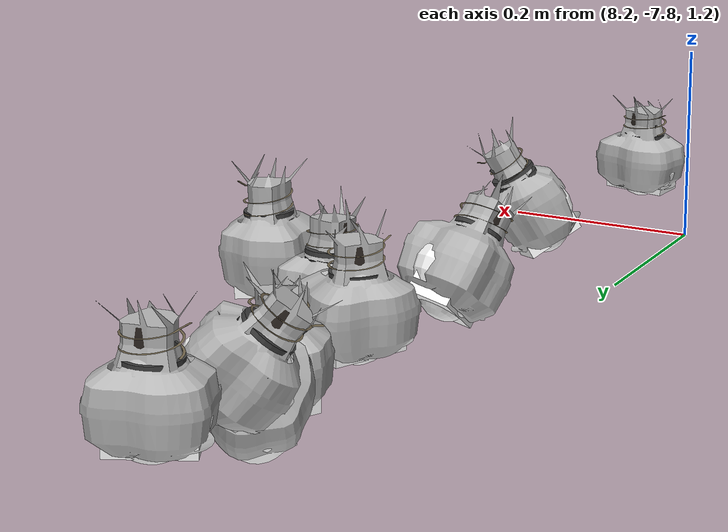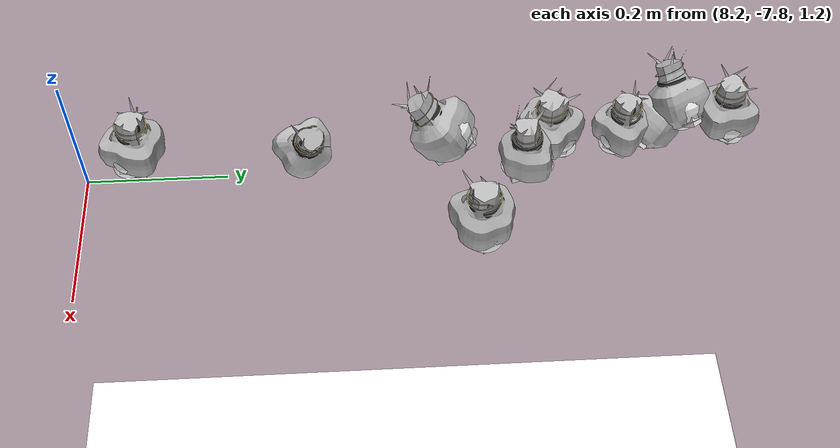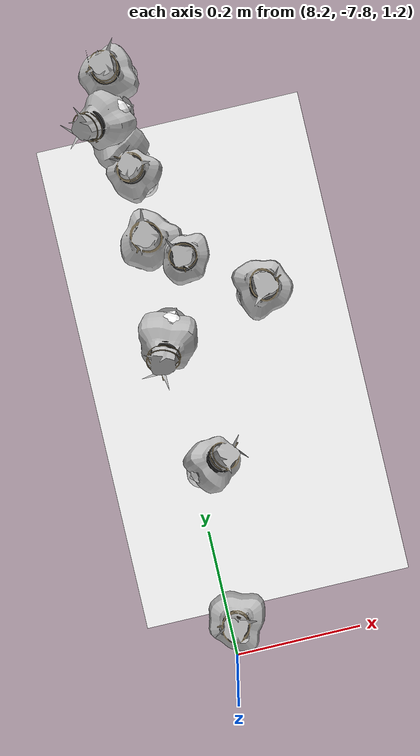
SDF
<sdf version="1.11">
 <world name="peach_orchard">
  <model name="ground">
   <static>true</static>
   <link name="link">
    <visual name="soil">
     <geometry><plane><normal>0 0 1</normal><size>32 22</size></plane></geometry>
     <material>
      <ambient>1 1 1 1</ambient>
      <diffuse>1 1 1 1</diffuse>
      <specular>0.1 0.1 0.1 1</specular>
      <pbr>
       <metal>
        <albedo_map>textures/soil_albedo.png</albedo_map>
        <normal_map type="tangent">textures/soil_normal.png</normal_map>
        <roughness>0.95</roughness>
        <metalness>0</metalness>
       </metal>
      </pbr>
     </material>
    </visual>
    <collision name="c_soil">
     <geometry><plane><normal>0 0 1</normal><size>32 22</size></plane></geometry>
    </collision>
   </link>
  </model>
  <model name="peach_tree_r4_t0_00">
   <pose>8.22 -6.90467 1.29116 0 0.0389199 -2.98187</pose>
   <static>true</static>
   <link name="bag">
    <visual name="bag_mesh">
     <pose>0 0 0.0428784 0 0 -0</pose>
     <geometry>
      <mesh><uri>model://peach_sim/meshes/bagged_peach.glb</uri><scale>1.01454 1.09332 0.974508</scale></mesh>
     </geometry>
    </visual>
    <visual name="body">
     <pose>0 0 0.0248784 0 0 0</pose>
     <geometry><ellipsoid><radii>0.0380451 0.0284263 0.0268686</radii></ellipsoid></geometry>
     <material>
      <ambient>1 1 1 1</ambient>
      <diffuse>1 1 1 1</diffuse>
      <specular>0.1 0.1 0.1 1</specular>
      <pbr>
       <metal>
        <albedo_map>textures/paper_bag_albedo.png</albedo_map>
        <normal_map type="tangent">textures/paper_bag_normal.png</normal_map>
        <roughness>0.72</roughness>
        <metalness>0</metalness>
       </metal>
      </pbr>
     </material>
    </visual>
    <visual name="bottom_fold">
     <pose>0 0 0.012 0 0 0.35</pose>
     <geometry><box><size>0.05897 0.0326902 0.022</size></box></geometry>
     <material>
      <ambient>1 1 1 1</ambient>
      <diffuse>1 1 1 1</diffuse>
      <specular>0.1 0.1 0.1 1</specular>
      <pbr>
       <metal>
        <albedo_map>textures/paper_bag_albedo.png</albedo_map>
        <normal_map type="tangent">textures/paper_bag_normal.png</normal_map>
        <roughness>0.8</roughness>
        <metalness>0</metalness>
       </metal>
      </pbr>
     </material>
    </visual>
    <visual name="fruit">
     <pose>0 0 0.0201139 0 0 0</pose>
     <geometry><sphere><radius>0.0271585</radius></sphere></geometry>
     <material>
      <ambient>1 1 1 1</ambient>
      <diffuse>1 1 1 1</diffuse>
      <specular>0.1 0.1 0.1 1</specular>
      <pbr>
       <metal>
        <albedo_map>textures/fruit_skin_albedo.png</albedo_map>
        <normal_map type="tangent">textures/fruit_skin_normal.png</normal_map>
        <roughness>0.55</roughness>
        <metalness>0</metalness>
       </metal>
      </pbr>
     </material>
    </visual>
    <visual name="neck">
     <pose>0 0 0.0587567 0 0 0</pose>
     <geometry><cylinder><radius>0.013</radius><length>0.018</length></cylinder></geometry>
     <material>
      <ambient>1 1 1 1</ambient>
      <diffuse>1 1 1 1</diffuse>
      <specular>0.1 0.1 0.1 1</specular>
      <pbr>
       <metal>
        <albedo_map>textures/paper_bag_albedo.png</albedo_map>
        <normal_map type="tangent">textures/paper_bag_normal.png</normal_map>
        <roughness>0.75</roughness>
        <metalness>0</metalness>
       </metal>
      </pbr>
     </material>
    </visual>
    <visual name="gather">
     <pose>0 0 0.0397567 0 0 0</pose>
     <geometry><cylinder><radius>0.019</radius><length>0.02</length></cylinder></geometry>
     <material>
      <ambient>1 1 1 1</ambient>
      <diffuse>1 1 1 1</diffuse>
      <specular>0.1 0.1 0.1 1</specular>
      <pbr>
       <metal>
        <albedo_map>textures/paper_bag_albedo.png</albedo_map>
        <normal_map type="tangent">textures/paper_bag_normal.png</normal_map>
        <roughness>0.8</roughness>
        <metalness>0</metalness>
       </metal>
      </pbr>
     </material>
    </visual>
    <visual name="inner_paper">
     <pose>0 0 0.0637567 0 0 0</pose>
     <geometry><cylinder><radius>0.01</radius><length>0.008</length></cylinder></geometry>
     <material>
      <ambient>0.180392 0.14902 0.133333 1</ambient>
      <diffuse>0.180392 0.14902 0.133333 1</diffuse>
      <specular>0.1 0.1 0.1 1</specular>
     </material>
    </visual>
    <visual name="wire_0">
     <pose>0 0 0.0537567 0 0 0</pose>
     <geometry><cylinder><radius>0.0205</radius><length>0.0035</length></cylinder></geometry>
     <material>
      <ambient>0.25 0.25 0.25 1</ambient>
      <diffuse>0.25 0.25 0.25 1</diffuse>
      <specular>0.1 0.1 0.1 1</specular>
     </material>
    </visual>
    <visual name="wire_1">
     <pose>0 0 0.0607567 0 0 0</pose>
     <geometry><cylinder><radius>0.0205</radius><length>0.0035</length></cylinder></geometry>
     <material>
      <ambient>0.25 0.25 0.25 1</ambient>
      <diffuse>0.25 0.25 0.25 1</diffuse>
      <specular>0.1 0.1 0.1 1</specular>
     </material>
    </visual>
    <visual name="wire_tail">
     <pose>0.01 0 0.0617567 0 0.521618 0</pose>
     <geometry><cylinder><radius>0.0012</radius><length>0.026</length></cylinder></geometry>
     <material>
      <ambient>0.25 0.25 0.25 1</ambient>
      <diffuse>0.25 0.25 0.25 1</diffuse>
      <specular>0.1 0.1 0.1 1</specular>
     </material>
    </visual>
    <collision name="c_body">
     <pose>0 0 0.0248784 0 0 0</pose>
     <geometry><cylinder><radius>0.0380451</radius><length>0.0497567</length></cylinder></geometry>
    </collision>
   </link>
  </model>
  <model name="peach_tree_r4_t0_01">
   <pose>8.22 -7.01843 1.27 0 0.739093 2.13133</pose>
   <static>true</static>
   <link name="bag">
    <visual name="bag_mesh">
     <pose>0 0 0.0444696 0 0 0</pose>
     <geometry>
      <mesh><uri>model://peach_sim/meshes/bagged_peach.glb</uri><scale>0.957602 1.08481 1.01067</scale></mesh>
     </geometry>
    </visual>
    <visual name="body">
     <pose>0 0 0.0264696 0 0 0</pose>
     <geometry><ellipsoid><radii>0.0359101 0.028205 0.0285872</radii></ellipsoid></geometry>
     <material>
      <ambient>1 1 1 1</ambient>
      <diffuse>1 1 1 1</diffuse>
      <specular>0.1 0.1 0.1 1</specular>
      <pbr>
       <metal>
        <albedo_map>textures/paper_bag_albedo.png</albedo_map>
        <normal_map type="tangent">textures/paper_bag_normal.png</normal_map>
        <roughness>0.72</roughness>
        <metalness>0</metalness>
       </metal>
      </pbr>
     </material>
    </visual>
    <visual name="bottom_fold">
     <pose>0 0 0.012 0 0 0.35</pose>
     <geometry><box><size>0.0556606 0.0324357 0.022</size></box></geometry>
     <material>
      <ambient>1 1 1 1</ambient>
      <diffuse>1 1 1 1</diffuse>
      <specular>0.1 0.1 0.1 1</specular>
      <pbr>
       <metal>
        <albedo_map>textures/paper_bag_albedo.png</albedo_map>
        <normal_map type="tangent">textures/paper_bag_normal.png</normal_map>
        <roughness>0.8</roughness>
        <metalness>0</metalness>
       </metal>
      </pbr>
     </material>
    </visual>
    <visual name="fruit">
     <pose>0 0 0.0205557 0 0 0</pose>
     <geometry><sphere><radius>0.027618</radius></sphere></geometry>
     <material>
      <ambient>1 1 1 1</ambient>
      <diffuse>1 1 1 1</diffuse>
      <specular>0.1 0.1 0.1 1</specular>
      <pbr>
       <metal>
        <albedo_map>textures/fruit_skin_albedo.png</albedo_map>
        <normal_map type="tangent">textures/fruit_skin_normal.png</normal_map>
        <roughness>0.55</roughness>
        <metalness>0</metalness>
       </metal>
      </pbr>
     </material>
    </visual>
    <visual name="neck">
     <pose>0 0 0.0619392 0 0 0</pose>
     <geometry><cylinder><radius>0.013</radius><length>0.018</length></cylinder></geometry>
     <material>
      <ambient>1 1 1 1</ambient>
      <diffuse>1 1 1 1</diffuse>
      <specular>0.1 0.1 0.1 1</specular>
      <pbr>
       <metal>
        <albedo_map>textures/paper_bag_albedo.png</albedo_map>
        <normal_map type="tangent">textures/paper_bag_normal.png</normal_map>
        <roughness>0.75</roughness>
        <metalness>0</metalness>
       </metal>
      </pbr>
     </material>
    </visual>
    <visual name="gather">
     <pose>0 0 0.0429392 0 0 0</pose>
     <geometry><cylinder><radius>0.019</radius><length>0.02</length></cylinder></geometry>
     <material>
      <ambient>1 1 1 1</ambient>
      <diffuse>1 1 1 1</diffuse>
      <specular>0.1 0.1 0.1 1</specular>
      <pbr>
       <metal>
        <albedo_map>textures/paper_bag_albedo.png</albedo_map>
        <normal_map type="tangent">textures/paper_bag_normal.png</normal_map>
        <roughness>0.8</roughness>
        <metalness>0</metalness>
       </metal>
      </pbr>
     </material>
    </visual>
    <visual name="inner_paper">
     <pose>0 0 0.0669392 0 0 0</pose>
     <geometry><cylinder><radius>0.01</radius><length>0.008</length></cylinder></geometry>
     <material>
      <ambient>0.180392 0.14902 0.133333 1</ambient>
      <diffuse>0.180392 0.14902 0.133333 1</diffuse>
      <specular>0.1 0.1 0.1 1</specular>
     </material>
    </visual>
    <visual name="wire_0">
     <pose>0 0 0.0569392 0 0 0</pose>
     <geometry><cylinder><radius>0.0205</radius><length>0.0035</length></cylinder></geometry>
     <material>
      <ambient>0.25 0.25 0.25 1</ambient>
      <diffuse>0.25 0.25 0.25 1</diffuse>
      <specular>0.1 0.1 0.1 1</specular>
     </material>
    </visual>
    <visual name="wire_1">
     <pose>0 0 0.0639392 0 0 0</pose>
     <geometry><cylinder><radius>0.0205</radius><length>0.0035</length></cylinder></geometry>
     <material>
      <ambient>0.25 0.25 0.25 1</ambient>
      <diffuse>0.25 0.25 0.25 1</diffuse>
      <specular>0.1 0.1 0.1 1</specular>
     </material>
    </visual>
    <visual name="wire_tail">
     <pose>0.01 0 0.0649392 0 0.521618 0</pose>
     <geometry><cylinder><radius>0.0012</radius><length>0.026</length></cylinder></geometry>
     <material>
      <ambient>0.25 0.25 0.25 1</ambient>
      <diffuse>0.25 0.25 0.25 1</diffuse>
      <specular>0.1 0.1 0.1 1</specular>
     </material>
    </visual>
    <collision name="c_body">
     <pose>0 0 0.0264696 0 0 0</pose>
     <geometry><cylinder><radius>0.0359101</radius><length>0.0529392</length></cylinder></geometry>
    </collision>
   </link>
  </model>
  <model name="peach_tree_r4_t0_02">
   <pose>8.22 -7.04487 1.27 0 0.0208164 2.27193</pose>
   <static>true</static>
   <link name="bag">
    <visual name="bag_mesh">
     <pose>0 0 0.0414469 0 0 0</pose>
     <geometry>
      <mesh><uri>model://peach_sim/meshes/bagged_peach.glb</uri><scale>0.959274 1.07023 0.941975</scale></mesh>
     </geometry>
    </visual>
    <visual name="body">
     <pose>0 0 0.0234469 0 0 0</pose>
     <geometry><ellipsoid><radii>0.0359728 0.0278259 0.0253227</radii></ellipsoid></geometry>
     <material>
      <ambient>1 1 1 1</ambient>
      <diffuse>1 1 1 1</diffuse>
      <specular>0.1 0.1 0.1 1</specular>
      <pbr>
       <metal>
        <albedo_map>textures/paper_bag_albedo.png</albedo_map>
        <normal_map type="tangent">textures/paper_bag_normal.png</normal_map>
        <roughness>0.72</roughness>
        <metalness>0</metalness>
       </metal>
      </pbr>
     </material>
    </visual>
    <visual name="bottom_fold">
     <pose>0 0 0.012 0 0 0.35</pose>
     <geometry><box><size>0.0557578 0.0319998 0.022</size></box></geometry>
     <material>
      <ambient>1 1 1 1</ambient>
      <diffuse>1 1 1 1</diffuse>
      <specular>0.1 0.1 0.1 1</specular>
      <pbr>
       <metal>
        <albedo_map>textures/paper_bag_albedo.png</albedo_map>
        <normal_map type="tangent">textures/paper_bag_normal.png</normal_map>
        <roughness>0.8</roughness>
        <metalness>0</metalness>
       </metal>
      </pbr>
     </material>
    </visual>
    <visual name="fruit">
     <pose>0 0 0.0189409 0 0 0</pose>
     <geometry><sphere><radius>0.0259385</radius></sphere></geometry>
     <material>
      <ambient>1 1 1 1</ambient>
      <diffuse>1 1 1 1</diffuse>
      <specular>0.1 0.1 0.1 1</specular>
      <pbr>
       <metal>
        <albedo_map>textures/fruit_skin_albedo.png</albedo_map>
        <normal_map type="tangent">textures/fruit_skin_normal.png</normal_map>
        <roughness>0.55</roughness>
        <metalness>0</metalness>
       </metal>
      </pbr>
     </material>
    </visual>
    <visual name="neck">
     <pose>0 0 0.0558938 0 0 0</pose>
     <geometry><cylinder><radius>0.013</radius><length>0.018</length></cylinder></geometry>
     <material>
      <ambient>1 1 1 1</ambient>
      <diffuse>1 1 1 1</diffuse>
      <specular>0.1 0.1 0.1 1</specular>
      <pbr>
       <metal>
        <albedo_map>textures/paper_bag_albedo.png</albedo_map>
        <normal_map type="tangent">textures/paper_bag_normal.png</normal_map>
        <roughness>0.75</roughness>
        <metalness>0</metalness>
       </metal>
      </pbr>
     </material>
    </visual>
    <visual name="gather">
     <pose>0 0 0.0368938 0 0 0</pose>
     <geometry><cylinder><radius>0.019</radius><length>0.02</length></cylinder></geometry>
     <material>
      <ambient>1 1 1 1</ambient>
      <diffuse>1 1 1 1</diffuse>
      <specular>0.1 0.1 0.1 1</specular>
      <pbr>
       <metal>
        <albedo_map>textures/paper_bag_albedo.png</albedo_map>
        <normal_map type="tangent">textures/paper_bag_normal.png</normal_map>
        <roughness>0.8</roughness>
        <metalness>0</metalness>
       </metal>
      </pbr>
     </material>
    </visual>
    <visual name="inner_paper">
     <pose>0 0 0.0608938 0 0 0</pose>
     <geometry><cylinder><radius>0.01</radius><length>0.008</length></cylinder></geometry>
     <material>
      <ambient>0.180392 0.14902 0.133333 1</ambient>
      <diffuse>0.180392 0.14902 0.133333 1</diffuse>
      <specular>0.1 0.1 0.1 1</specular>
     </material>
    </visual>
    <visual name="wire_0">
     <pose>0 0 0.0508938 0 0 0</pose>
     <geometry><cylinder><radius>0.0205</radius><length>0.0035</length></cylinder></geometry>
     <material>
      <ambient>0.25 0.25 0.25 1</ambient>
      <diffuse>0.25 0.25 0.25 1</diffuse>
      <specular>0.1 0.1 0.1 1</specular>
     </material>
    </visual>
    <visual name="wire_1">
     <pose>0 0 0.0578938 0 0 0</pose>
     <geometry><cylinder><radius>0.0205</radius><length>0.0035</length></cylinder></geometry>
     <material>
      <ambient>0.25 0.25 0.25 1</ambient>
      <diffuse>0.25 0.25 0.25 1</diffuse>
      <specular>0.1 0.1 0.1 1</specular>
     </material>
    </visual>
    <visual name="wire_tail">
     <pose>0.01 0 0.0588938 0 0.521618 0</pose>
     <geometry><cylinder><radius>0.0012</radius><length>0.026</length></cylinder></geometry>
     <material>
      <ambient>0.25 0.25 0.25 1</ambient>
      <diffuse>0.25 0.25 0.25 1</diffuse>
      <specular>0.1 0.1 0.1 1</specular>
     </material>
    </visual>
    <collision name="c_body">
     <pose>0 0 0.0234469 0 0 0</pose>
     <geometry><cylinder><radius>0.0359728</radius><length>0.0468938</length></cylinder></geometry>
    </collision>
   </link>
  </model>
  <model name="peach_tree_r4_t0_03">
   <pose>8.26451 -7.17967 1.27 0 0.0647248 -1.70274</pose>
   <static>true</static>
   <link name="bag">
    <visual name="bag_mesh">
     <pose>0 0 0.046807 0 0 -0</pose>
     <geometry>
      <mesh><uri>model://peach_sim/meshes/bagged_peach.glb</uri><scale>0.928806 1.05896 1.06379</scale></mesh>
     </geometry>
    </visual>
    <visual name="body">
     <pose>0 0 0.028807 0 0 0</pose>
     <geometry><ellipsoid><radii>0.0348302 0.0275329 0.0311115</radii></ellipsoid></geometry>
     <material>
      <ambient>1 1 1 1</ambient>
      <diffuse>1 1 1 1</diffuse>
      <specular>0.1 0.1 0.1 1</specular>
      <pbr>
       <metal>
        <albedo_map>textures/paper_bag_albedo.png</albedo_map>
        <normal_map type="tangent">textures/paper_bag_normal.png</normal_map>
        <roughness>0.72</roughness>
        <metalness>0</metalness>
       </metal>
      </pbr>
     </material>
    </visual>
    <visual name="bottom_fold">
     <pose>0 0 0.012 0 0 0.35</pose>
     <geometry><box><size>0.0539868 0.0316629 0.022</size></box></geometry>
     <material>
      <ambient>1 1 1 1</ambient>
      <diffuse>1 1 1 1</diffuse>
      <specular>0.1 0.1 0.1 1</specular>
      <pbr>
       <metal>
        <albedo_map>textures/paper_bag_albedo.png</albedo_map>
        <normal_map type="tangent">textures/paper_bag_normal.png</normal_map>
        <roughness>0.8</roughness>
        <metalness>0</metalness>
       </metal>
      </pbr>
     </material>
    </visual>
    <visual name="fruit">
     <pose>0 0 0.0199559 0 0 0</pose>
     <geometry><sphere><radius>0.0269942</radius></sphere></geometry>
     <material>
      <ambient>1 1 1 1</ambient>
      <diffuse>1 1 1 1</diffuse>
      <specular>0.1 0.1 0.1 1</specular>
      <pbr>
       <metal>
        <albedo_map>textures/fruit_skin_albedo.png</albedo_map>
        <normal_map type="tangent">textures/fruit_skin_normal.png</normal_map>
        <roughness>0.55</roughness>
        <metalness>0</metalness>
       </metal>
      </pbr>
     </material>
    </visual>
    <visual name="neck">
     <pose>0 0 0.0666139 0 0 0</pose>
     <geometry><cylinder><radius>0.013</radius><length>0.018</length></cylinder></geometry>
     <material>
      <ambient>1 1 1 1</ambient>
      <diffuse>1 1 1 1</diffuse>
      <specular>0.1 0.1 0.1 1</specular>
      <pbr>
       <metal>
        <albedo_map>textures/paper_bag_albedo.png</albedo_map>
        <normal_map type="tangent">textures/paper_bag_normal.png</normal_map>
        <roughness>0.75</roughness>
        <metalness>0</metalness>
       </metal>
      </pbr>
     </material>
    </visual>
    <visual name="gather">
     <pose>0 0 0.0476139 0 0 0</pose>
     <geometry><cylinder><radius>0.019</radius><length>0.02</length></cylinder></geometry>
     <material>
      <ambient>1 1 1 1</ambient>
      <diffuse>1 1 1 1</diffuse>
      <specular>0.1 0.1 0.1 1</specular>
      <pbr>
       <metal>
        <albedo_map>textures/paper_bag_albedo.png</albedo_map>
        <normal_map type="tangent">textures/paper_bag_normal.png</normal_map>
        <roughness>0.8</roughness>
        <metalness>0</metalness>
       </metal>
      </pbr>
     </material>
    </visual>
    <visual name="inner_paper">
     <pose>0 0 0.0716139 0 0 0</pose>
     <geometry><cylinder><radius>0.01</radius><length>0.008</length></cylinder></geometry>
     <material>
      <ambient>0.180392 0.14902 0.133333 1</ambient>
      <diffuse>0.180392 0.14902 0.133333 1</diffuse>
      <specular>0.1 0.1 0.1 1</specular>
     </material>
    </visual>
    <visual name="wire_0">
     <pose>0 0 0.0616139 0 0 0</pose>
     <geometry><cylinder><radius>0.0205</radius><length>0.0035</length></cylinder></geometry>
     <material>
      <ambient>0.25 0.25 0.25 1</ambient>
      <diffuse>0.25 0.25 0.25 1</diffuse>
      <specular>0.1 0.1 0.1 1</specular>
     </material>
    </visual>
    <visual name="wire_1">
     <pose>0 0 0.0686139 0 0 0</pose>
     <geometry><cylinder><radius>0.0205</radius><length>0.0035</length></cylinder></geometry>
     <material>
      <ambient>0.25 0.25 0.25 1</ambient>
      <diffuse>0.25 0.25 0.25 1</diffuse>
      <specular>0.1 0.1 0.1 1</specular>
     </material>
    </visual>
    <visual name="wire_tail">
     <pose>0.01 0 0.0696139 0 0.521618 0</pose>
     <geometry><cylinder><radius>0.0012</radius><length>0.026</length></cylinder></geometry>
     <material>
      <ambient>0.25 0.25 0.25 1</ambient>
      <diffuse>0.25 0.25 0.25 1</diffuse>
      <specular>0.1 0.1 0.1 1</specular>
     </material>
    </visual>
    <collision name="c_body">
     <pose>0 0 0.028807 0 0 0</pose>
     <geometry><cylinder><radius>0.0348302</radius><length>0.0576139</length></cylinder></geometry>
    </collision>
   </link>
  </model>
  <model name="peach_tree_r4_t0_04">
   <pose>8.36489 -7.25063 1.27 0 0.0132302 0.177684</pose>
   <static>true</static>
   <link name="bag">
    <visual name="bag_mesh">
     <pose>0 0 0.047249 0 0 0</pose>
     <geometry>
      <mesh><uri>model://peach_sim/meshes/bagged_peach.glb</uri><scale>1.01755 1.23106 1.07384</scale></mesh>
     </geometry>
    </visual>
    <visual name="body">
     <pose>0 0 0.029249 0 0 0</pose>
     <geometry><ellipsoid><radii>0.0381581 0.0320075 0.0315889</radii></ellipsoid></geometry>
     <material>
      <ambient>1 1 1 1</ambient>
      <diffuse>1 1 1 1</diffuse>
      <specular>0.1 0.1 0.1 1</specular>
      <pbr>
       <metal>
        <albedo_map>textures/paper_bag_albedo.png</albedo_map>
        <normal_map type="tangent">textures/paper_bag_normal.png</normal_map>
        <roughness>0.72</roughness>
        <metalness>0</metalness>
       </metal>
      </pbr>
     </material>
    </visual>
    <visual name="bottom_fold">
     <pose>0 0 0.012 0 0 0.35</pose>
     <geometry><box><size>0.059145 0.0368086 0.022</size></box></geometry>
     <material>
      <ambient>1 1 1 1</ambient>
      <diffuse>1 1 1 1</diffuse>
      <specular>0.1 0.1 0.1 1</specular>
      <pbr>
       <metal>
        <albedo_map>textures/paper_bag_albedo.png</albedo_map>
        <normal_map type="tangent">textures/paper_bag_normal.png</normal_map>
        <roughness>0.8</roughness>
        <metalness>0</metalness>
       </metal>
      </pbr>
     </material>
    </visual>
    <visual name="fruit">
     <pose>0 0 0.0192621 0 0 0</pose>
     <geometry><sphere><radius>0.0262725</radius></sphere></geometry>
     <material>
      <ambient>1 1 1 1</ambient>
      <diffuse>1 1 1 1</diffuse>
      <specular>0.1 0.1 0.1 1</specular>
      <pbr>
       <metal>
        <albedo_map>textures/fruit_skin_albedo.png</albedo_map>
        <normal_map type="tangent">textures/fruit_skin_normal.png</normal_map>
        <roughness>0.55</roughness>
        <metalness>0</metalness>
       </metal>
      </pbr>
     </material>
    </visual>
    <visual name="neck">
     <pose>0 0 0.067498 0 0 0</pose>
     <geometry><cylinder><radius>0.013</radius><length>0.018</length></cylinder></geometry>
     <material>
      <ambient>1 1 1 1</ambient>
      <diffuse>1 1 1 1</diffuse>
      <specular>0.1 0.1 0.1 1</specular>
      <pbr>
       <metal>
        <albedo_map>textures/paper_bag_albedo.png</albedo_map>
        <normal_map type="tangent">textures/paper_bag_normal.png</normal_map>
        <roughness>0.75</roughness>
        <metalness>0</metalness>
       </metal>
      </pbr>
     </material>
    </visual>
    <visual name="gather">
     <pose>0 0 0.048498 0 0 0</pose>
     <geometry><cylinder><radius>0.019</radius><length>0.02</length></cylinder></geometry>
     <material>
      <ambient>1 1 1 1</ambient>
      <diffuse>1 1 1 1</diffuse>
      <specular>0.1 0.1 0.1 1</specular>
      <pbr>
       <metal>
        <albedo_map>textures/paper_bag_albedo.png</albedo_map>
        <normal_map type="tangent">textures/paper_bag_normal.png</normal_map>
        <roughness>0.8</roughness>
        <metalness>0</metalness>
       </metal>
      </pbr>
     </material>
    </visual>
    <visual name="inner_paper">
     <pose>0 0 0.072498 0 0 0</pose>
     <geometry><cylinder><radius>0.01</radius><length>0.008</length></cylinder></geometry>
     <material>
      <ambient>0.180392 0.14902 0.133333 1</ambient>
      <diffuse>0.180392 0.14902 0.133333 1</diffuse>
      <specular>0.1 0.1 0.1 1</specular>
     </material>
    </visual>
    <visual name="wire_0">
     <pose>0 0 0.062498 0 0 0</pose>
     <geometry><cylinder><radius>0.0205</radius><length>0.0035</length></cylinder></geometry>
     <material>
      <ambient>0.25 0.25 0.25 1</ambient>
      <diffuse>0.25 0.25 0.25 1</diffuse>
      <specular>0.1 0.1 0.1 1</specular>
     </material>
    </visual>
    <visual name="wire_1">
     <pose>0 0 0.069498 0 0 0</pose>
     <geometry><cylinder><radius>0.0205</radius><length>0.0035</length></cylinder></geometry>
     <material>
      <ambient>0.25 0.25 0.25 1</ambient>
      <diffuse>0.25 0.25 0.25 1</diffuse>
      <specular>0.1 0.1 0.1 1</specular>
     </material>
    </visual>
    <visual name="wire_tail">
     <pose>0.01 0 0.070498 0 0.521618 0</pose>
     <geometry><cylinder><radius>0.0012</radius><length>0.026</length></cylinder></geometry>
     <material>
      <ambient>0.25 0.25 0.25 1</ambient>
      <diffuse>0.25 0.25 0.25 1</diffuse>
      <specular>0.1 0.1 0.1 1</specular>
     </material>
    </visual>
    <collision name="c_body">
     <pose>0 0 0.029249 0 0 0</pose>
     <geometry><cylinder><radius>0.0381581</radius><length>0.058498</length></cylinder></geometry>
    </collision>
   </link>
  </model>
  <model name="peach_tree_r4_t0_05">
   <pose>8.22 -6.95884 1.30147 0 0.702871 -2.68317</pose>
   <static>true</static>
   <link name="bag">
    <visual name="bag_mesh">
     <pose>0 0 0.0449854 0 0 -0</pose>
     <geometry>
      <mesh><uri>model://peach_sim/meshes/bagged_peach.glb</uri><scale>0.973898 1.10184 1.0224</scale></mesh>
     </geometry>
    </visual>
    <visual name="body">
     <pose>0 0 0.0269854 0 0 0</pose>
     <geometry><ellipsoid><radii>0.0365212 0.0286477 0.0291443</radii></ellipsoid></geometry>
     <material>
      <ambient>1 1 1 1</ambient>
      <diffuse>1 1 1 1</diffuse>
      <specular>0.1 0.1 0.1 1</specular>
      <pbr>
       <metal>
        <albedo_map>textures/paper_bag_albedo.png</albedo_map>
        <normal_map type="tangent">textures/paper_bag_normal.png</normal_map>
        <roughness>0.72</roughness>
        <metalness>0</metalness>
       </metal>
      </pbr>
     </material>
    </visual>
    <visual name="bottom_fold">
     <pose>0 0 0.012 0 0 0.35</pose>
     <geometry><box><size>0.0566078 0.0329449 0.022</size></box></geometry>
     <material>
      <ambient>1 1 1 1</ambient>
      <diffuse>1 1 1 1</diffuse>
      <specular>0.1 0.1 0.1 1</specular>
      <pbr>
       <metal>
        <albedo_map>textures/paper_bag_albedo.png</albedo_map>
        <normal_map type="tangent">textures/paper_bag_normal.png</normal_map>
        <roughness>0.8</roughness>
        <metalness>0</metalness>
       </metal>
      </pbr>
     </material>
    </visual>
    <visual name="fruit">
     <pose>0 0 0.0207153 0 0 0</pose>
     <geometry><sphere><radius>0.0277839</radius></sphere></geometry>
     <material>
      <ambient>1 1 1 1</ambient>
      <diffuse>1 1 1 1</diffuse>
      <specular>0.1 0.1 0.1 1</specular>
      <pbr>
       <metal>
        <albedo_map>textures/fruit_skin_albedo.png</albedo_map>
        <normal_map type="tangent">textures/fruit_skin_normal.png</normal_map>
        <roughness>0.55</roughness>
        <metalness>0</metalness>
       </metal>
      </pbr>
     </material>
    </visual>
    <visual name="neck">
     <pose>0 0 0.0629709 0 0 0</pose>
     <geometry><cylinder><radius>0.013</radius><length>0.018</length></cylinder></geometry>
     <material>
      <ambient>1 1 1 1</ambient>
      <diffuse>1 1 1 1</diffuse>
      <specular>0.1 0.1 0.1 1</specular>
      <pbr>
       <metal>
        <albedo_map>textures/paper_bag_albedo.png</albedo_map>
        <normal_map type="tangent">textures/paper_bag_normal.png</normal_map>
        <roughness>0.75</roughness>
        <metalness>0</metalness>
       </metal>
      </pbr>
     </material>
    </visual>
    <visual name="gather">
     <pose>0 0 0.0439709 0 0 0</pose>
     <geometry><cylinder><radius>0.019</radius><length>0.02</length></cylinder></geometry>
     <material>
      <ambient>1 1 1 1</ambient>
      <diffuse>1 1 1 1</diffuse>
      <specular>0.1 0.1 0.1 1</specular>
      <pbr>
       <metal>
        <albedo_map>textures/paper_bag_albedo.png</albedo_map>
        <normal_map type="tangent">textures/paper_bag_normal.png</normal_map>
        <roughness>0.8</roughness>
        <metalness>0</metalness>
       </metal>
      </pbr>
     </material>
    </visual>
    <visual name="inner_paper">
     <pose>0 0 0.0679709 0 0 0</pose>
     <geometry><cylinder><radius>0.01</radius><length>0.008</length></cylinder></geometry>
     <material>
      <ambient>0.180392 0.14902 0.133333 1</ambient>
      <diffuse>0.180392 0.14902 0.133333 1</diffuse>
      <specular>0.1 0.1 0.1 1</specular>
     </material>
    </visual>
    <visual name="wire_0">
     <pose>0 0 0.0579709 0 0 0</pose>
     <geometry><cylinder><radius>0.0205</radius><length>0.0035</length></cylinder></geometry>
     <material>
      <ambient>0.25 0.25 0.25 1</ambient>
      <diffuse>0.25 0.25 0.25 1</diffuse>
      <specular>0.1 0.1 0.1 1</specular>
     </material>
    </visual>
    <visual name="wire_1">
     <pose>0 0 0.0649709 0 0 0</pose>
     <geometry><cylinder><radius>0.0205</radius><length>0.0035</length></cylinder></geometry>
     <material>
      <ambient>0.25 0.25 0.25 1</ambient>
      <diffuse>0.25 0.25 0.25 1</diffuse>
      <specular>0.1 0.1 0.1 1</specular>
     </material>
    </visual>
    <visual name="wire_tail">
     <pose>0.01 0 0.0659709 0 0.521618 0</pose>
     <geometry><cylinder><radius>0.0012</radius><length>0.026</length></cylinder></geometry>
     <material>
      <ambient>0.25 0.25 0.25 1</ambient>
      <diffuse>0.25 0.25 0.25 1</diffuse>
      <specular>0.1 0.1 0.1 1</specular>
     </material>
    </visual>
    <collision name="c_body">
     <pose>0 0 0.0269854 0 0 0</pose>
     <geometry><cylinder><radius>0.0365212</radius><length>0.0539709</length></cylinder></geometry>
    </collision>
   </link>
  </model>
  <model name="peach_tree_r4_t0_06">
   <pose>8.22 -7.14661 1.27429 0 0.00158103 -2.34933</pose>
   <static>true</static>
   <link name="bag">
    <visual name="bag_mesh">
     <pose>0 0 0.0441129 0 0 -0</pose>
     <geometry>
      <mesh><uri>model://peach_sim/meshes/bagged_peach.glb</uri><scale>1.08237 1.19689 1.00257</scale></mesh>
     </geometry>
    </visual>
    <visual name="body">
     <pose>0 0 0.0261129 0 0 0</pose>
     <geometry><ellipsoid><radii>0.0405887 0.0311192 0.0282019</radii></ellipsoid></geometry>
     <material>
      <ambient>1 1 1 1</ambient>
      <diffuse>1 1 1 1</diffuse>
      <specular>0.1 0.1 0.1 1</specular>
      <pbr>
       <metal>
        <albedo_map>textures/paper_bag_albedo.png</albedo_map>
        <normal_map type="tangent">textures/paper_bag_normal.png</normal_map>
        <roughness>0.72</roughness>
        <metalness>0</metalness>
       </metal>
      </pbr>
     </material>
    </visual>
    <visual name="bottom_fold">
     <pose>0 0 0.012 0 0 0.35</pose>
     <geometry><box><size>0.0629125 0.0357871 0.022</size></box></geometry>
     <material>
      <ambient>1 1 1 1</ambient>
      <diffuse>1 1 1 1</diffuse>
      <specular>0.1 0.1 0.1 1</specular>
      <pbr>
       <metal>
        <albedo_map>textures/paper_bag_albedo.png</albedo_map>
        <normal_map type="tangent">textures/paper_bag_normal.png</normal_map>
        <roughness>0.8</roughness>
        <metalness>0</metalness>
       </metal>
      </pbr>
     </material>
    </visual>
    <visual name="fruit">
     <pose>0 0 0.0189223 0 0 0</pose>
     <geometry><sphere><radius>0.0259192</radius></sphere></geometry>
     <material>
      <ambient>1 1 1 1</ambient>
      <diffuse>1 1 1 1</diffuse>
      <specular>0.1 0.1 0.1 1</specular>
      <pbr>
       <metal>
        <albedo_map>textures/fruit_skin_albedo.png</albedo_map>
        <normal_map type="tangent">textures/fruit_skin_normal.png</normal_map>
        <roughness>0.55</roughness>
        <metalness>0</metalness>
       </metal>
      </pbr>
     </material>
    </visual>
    <visual name="neck">
     <pose>0 0 0.0612258 0 0 0</pose>
     <geometry><cylinder><radius>0.013</radius><length>0.018</length></cylinder></geometry>
     <material>
      <ambient>1 1 1 1</ambient>
      <diffuse>1 1 1 1</diffuse>
      <specular>0.1 0.1 0.1 1</specular>
      <pbr>
       <metal>
        <albedo_map>textures/paper_bag_albedo.png</albedo_map>
        <normal_map type="tangent">textures/paper_bag_normal.png</normal_map>
        <roughness>0.75</roughness>
        <metalness>0</metalness>
       </metal>
      </pbr>
     </material>
    </visual>
    <visual name="gather">
     <pose>0 0 0.0422258 0 0 0</pose>
     <geometry><cylinder><radius>0.019</radius><length>0.02</length></cylinder></geometry>
     <material>
      <ambient>1 1 1 1</ambient>
      <diffuse>1 1 1 1</diffuse>
      <specular>0.1 0.1 0.1 1</specular>
      <pbr>
       <metal>
        <albedo_map>textures/paper_bag_albedo.png</albedo_map>
        <normal_map type="tangent">textures/paper_bag_normal.png</normal_map>
        <roughness>0.8</roughness>
        <metalness>0</metalness>
       </metal>
      </pbr>
     </material>
    </visual>
    <visual name="inner_paper">
     <pose>0 0 0.0662258 0 0 0</pose>
     <geometry><cylinder><radius>0.01</radius><length>0.008</length></cylinder></geometry>
     <material>
      <ambient>0.180392 0.14902 0.133333 1</ambient>
      <diffuse>0.180392 0.14902 0.133333 1</diffuse>
      <specular>0.1 0.1 0.1 1</specular>
     </material>
    </visual>
    <visual name="wire_0">
     <pose>0 0 0.0562258 0 0 0</pose>
     <geometry><cylinder><radius>0.0205</radius><length>0.0035</length></cylinder></geometry>
     <material>
      <ambient>0.25 0.25 0.25 1</ambient>
      <diffuse>0.25 0.25 0.25 1</diffuse>
      <specular>0.1 0.1 0.1 1</specular>
     </material>
    </visual>
    <visual name="wire_1">
     <pose>0 0 0.0632258 0 0 0</pose>
     <geometry><cylinder><radius>0.0205</radius><length>0.0035</length></cylinder></geometry>
     <material>
      <ambient>0.25 0.25 0.25 1</ambient>
      <diffuse>0.25 0.25 0.25 1</diffuse>
      <specular>0.1 0.1 0.1 1</specular>
     </material>
    </visual>
    <visual name="wire_tail">
     <pose>0.01 0 0.0642258 0 0.521618 0</pose>
     <geometry><cylinder><radius>0.0012</radius><length>0.026</length></cylinder></geometry>
     <material>
      <ambient>0.25 0.25 0.25 1</ambient>
      <diffuse>0.25 0.25 0.25 1</diffuse>
      <specular>0.1 0.1 0.1 1</specular>
     </material>
    </visual>
    <collision name="c_body">
     <pose>0 0 0.0261129 0 0 0</pose>
     <geometry><cylinder><radius>0.0405887</radius><length>0.0522258</length></cylinder></geometry>
    </collision>
   </link>
  </model>
  <model name="peach_tree_r4_t0_07">
   <pose>8.22 -7.27251 1.27 0 0.647914 -1.90636</pose>
   <static>true</static>
   <link name="bag">
    <visual name="bag_mesh">
     <pose>0 0 0.049163 0 0 -0</pose>
     <geometry>
      <mesh><uri>model://peach_sim/meshes/bagged_peach.glb</uri><scale>1.06306 1.25983 1.11734</scale></mesh>
     </geometry>
    </visual>
    <visual name="body">
     <pose>0 0 0.031163 0 0 0</pose>
     <geometry><ellipsoid><radii>0.0398646 0.0327555 0.033656</radii></ellipsoid></geometry>
     <material>
      <ambient>1 1 1 1</ambient>
      <diffuse>1 1 1 1</diffuse>
      <specular>0.1 0.1 0.1 1</specular>
      <pbr>
       <metal>
        <albedo_map>textures/paper_bag_albedo.png</albedo_map>
        <normal_map type="tangent">textures/paper_bag_normal.png</normal_map>
        <roughness>0.72</roughness>
        <metalness>0</metalness>
       </metal>
      </pbr>
     </material>
    </visual>
    <visual name="bottom_fold">
     <pose>0 0 0.012 0 0 0.35</pose>
     <geometry><box><size>0.0617901 0.0376688 0.022</size></box></geometry>
     <material>
      <ambient>1 1 1 1</ambient>
      <diffuse>1 1 1 1</diffuse>
      <specular>0.1 0.1 0.1 1</specular>
      <pbr>
       <metal>
        <albedo_map>textures/paper_bag_albedo.png</albedo_map>
        <normal_map type="tangent">textures/paper_bag_normal.png</normal_map>
        <roughness>0.8</roughness>
        <metalness>0</metalness>
       </metal>
      </pbr>
     </material>
    </visual>
    <visual name="fruit">
     <pose>0 0 0.0178877 0 0 0</pose>
     <geometry><sphere><radius>0.0248432</radius></sphere></geometry>
     <material>
      <ambient>1 1 1 1</ambient>
      <diffuse>1 1 1 1</diffuse>
      <specular>0.1 0.1 0.1 1</specular>
      <pbr>
       <metal>
        <albedo_map>textures/fruit_skin_albedo.png</albedo_map>
        <normal_map type="tangent">textures/fruit_skin_normal.png</normal_map>
        <roughness>0.55</roughness>
        <metalness>0</metalness>
       </metal>
      </pbr>
     </material>
    </visual>
    <visual name="neck">
     <pose>0 0 0.0713259 0 0 0</pose>
     <geometry><cylinder><radius>0.013</radius><length>0.018</length></cylinder></geometry>
     <material>
      <ambient>1 1 1 1</ambient>
      <diffuse>1 1 1 1</diffuse>
      <specular>0.1 0.1 0.1 1</specular>
      <pbr>
       <metal>
        <albedo_map>textures/paper_bag_albedo.png</albedo_map>
        <normal_map type="tangent">textures/paper_bag_normal.png</normal_map>
        <roughness>0.75</roughness>
        <metalness>0</metalness>
       </metal>
      </pbr>
     </material>
    </visual>
    <visual name="gather">
     <pose>0 0 0.0523259 0 0 0</pose>
     <geometry><cylinder><radius>0.019</radius><length>0.02</length></cylinder></geometry>
     <material>
      <ambient>1 1 1 1</ambient>
      <diffuse>1 1 1 1</diffuse>
      <specular>0.1 0.1 0.1 1</specular>
      <pbr>
       <metal>
        <albedo_map>textures/paper_bag_albedo.png</albedo_map>
        <normal_map type="tangent">textures/paper_bag_normal.png</normal_map>
        <roughness>0.8</roughness>
        <metalness>0</metalness>
       </metal>
      </pbr>
     </material>
    </visual>
    <visual name="inner_paper">
     <pose>0 0 0.0763259 0 0 0</pose>
     <geometry><cylinder><radius>0.01</radius><length>0.008</length></cylinder></geometry>
     <material>
      <ambient>0.180392 0.14902 0.133333 1</ambient>
      <diffuse>0.180392 0.14902 0.133333 1</diffuse>
      <specular>0.1 0.1 0.1 1</specular>
     </material>
    </visual>
    <visual name="wire_0">
     <pose>0 0 0.0663259 0 0 0</pose>
     <geometry><cylinder><radius>0.0205</radius><length>0.0035</length></cylinder></geometry>
     <material>
      <ambient>0.25 0.25 0.25 1</ambient>
      <diffuse>0.25 0.25 0.25 1</diffuse>
      <specular>0.1 0.1 0.1 1</specular>
     </material>
    </visual>
    <visual name="wire_1">
     <pose>0 0 0.0733259 0 0 0</pose>
     <geometry><cylinder><radius>0.0205</radius><length>0.0035</length></cylinder></geometry>
     <material>
      <ambient>0.25 0.25 0.25 1</ambient>
      <diffuse>0.25 0.25 0.25 1</diffuse>
      <specular>0.1 0.1 0.1 1</specular>
     </material>
    </visual>
    <visual name="wire_tail">
     <pose>0.01 0 0.0743259 0 0.521618 0</pose>
     <geometry><cylinder><radius>0.0012</radius><length>0.026</length></cylinder></geometry>
     <material>
      <ambient>0.25 0.25 0.25 1</ambient>
      <diffuse>0.25 0.25 0.25 1</diffuse>
      <specular>0.1 0.1 0.1 1</specular>
     </material>
    </visual>
    <collision name="c_body">
     <pose>0 0 0.031163 0 0 0</pose>
     <geometry><cylinder><radius>0.0398646</radius><length>0.0623259</length></cylinder></geometry>
    </collision>
   </link>
  </model>
  <model name="peach_tree_r4_t0_08">
   <pose>8.22 -7.49253 1.27 0 0.507791 0.489081</pose>
   <static>true</static>
   <link name="bag">
    <visual name="bag_mesh">
     <pose>0 0 0.0496667 0 0 0</pose>
     <geometry>
      <mesh><uri>model://peach_sim/meshes/bagged_peach.glb</uri><scale>0.930517 1.09441 1.12879</scale></mesh>
     </geometry>
    </visual>
    <visual name="body">
     <pose>0 0 0.0316667 0 0 0</pose>
     <geometry><ellipsoid><radii>0.0348944 0.0284546 0.0342</radii></ellipsoid></geometry>
     <material>
      <ambient>1 1 1 1</ambient>
      <diffuse>1 1 1 1</diffuse>
      <specular>0.1 0.1 0.1 1</specular>
      <pbr>
       <metal>
        <albedo_map>textures/paper_bag_albedo.png</albedo_map>
        <normal_map type="tangent">textures/paper_bag_normal.png</normal_map>
        <roughness>0.72</roughness>
        <metalness>0</metalness>
       </metal>
      </pbr>
     </material>
    </visual>
    <visual name="bottom_fold">
     <pose>0 0 0.012 0 0 0.35</pose>
     <geometry><box><size>0.0540863 0.0327228 0.022</size></box></geometry>
     <material>
      <ambient>1 1 1 1</ambient>
      <diffuse>1 1 1 1</diffuse>
      <specular>0.1 0.1 0.1 1</specular>
      <pbr>
       <metal>
        <albedo_map>textures/paper_bag_albedo.png</albedo_map>
        <normal_map type="tangent">textures/paper_bag_normal.png</normal_map>
        <roughness>0.8</roughness>
        <metalness>0</metalness>
       </metal>
      </pbr>
     </material>
    </visual>
    <visual name="fruit">
     <pose>0 0 0.0171577 0 0 0</pose>
     <geometry><sphere><radius>0.024084</radius></sphere></geometry>
     <material>
      <ambient>1 1 1 1</ambient>
      <diffuse>1 1 1 1</diffuse>
      <specular>0.1 0.1 0.1 1</specular>
      <pbr>
       <metal>
        <albedo_map>textures/fruit_skin_albedo.png</albedo_map>
        <normal_map type="tangent">textures/fruit_skin_normal.png</normal_map>
        <roughness>0.55</roughness>
        <metalness>0</metalness>
       </metal>
      </pbr>
     </material>
    </visual>
    <visual name="neck">
     <pose>0 0 0.0723334 0 0 0</pose>
     <geometry><cylinder><radius>0.013</radius><length>0.018</length></cylinder></geometry>
     <material>
      <ambient>1 1 1 1</ambient>
      <diffuse>1 1 1 1</diffuse>
      <specular>0.1 0.1 0.1 1</specular>
      <pbr>
       <metal>
        <albedo_map>textures/paper_bag_albedo.png</albedo_map>
        <normal_map type="tangent">textures/paper_bag_normal.png</normal_map>
        <roughness>0.75</roughness>
        <metalness>0</metalness>
       </metal>
      </pbr>
     </material>
    </visual>
    <visual name="gather">
     <pose>0 0 0.0533334 0 0 0</pose>
     <geometry><cylinder><radius>0.019</radius><length>0.02</length></cylinder></geometry>
     <material>
      <ambient>1 1 1 1</ambient>
      <diffuse>1 1 1 1</diffuse>
      <specular>0.1 0.1 0.1 1</specular>
      <pbr>
       <metal>
        <albedo_map>textures/paper_bag_albedo.png</albedo_map>
        <normal_map type="tangent">textures/paper_bag_normal.png</normal_map>
        <roughness>0.8</roughness>
        <metalness>0</metalness>
       </metal>
      </pbr>
     </material>
    </visual>
    <visual name="inner_paper">
     <pose>0 0 0.0773334 0 0 0</pose>
     <geometry><cylinder><radius>0.01</radius><length>0.008</length></cylinder></geometry>
     <material>
      <ambient>0.180392 0.14902 0.133333 1</ambient>
      <diffuse>0.180392 0.14902 0.133333 1</diffuse>
      <specular>0.1 0.1 0.1 1</specular>
     </material>
    </visual>
    <visual name="wire_0">
     <pose>0 0 0.0673334 0 0 0</pose>
     <geometry><cylinder><radius>0.0205</radius><length>0.0035</length></cylinder></geometry>
     <material>
      <ambient>0.25 0.25 0.25 1</ambient>
      <diffuse>0.25 0.25 0.25 1</diffuse>
      <specular>0.1 0.1 0.1 1</specular>
     </material>
    </visual>
    <visual name="wire_1">
     <pose>0 0 0.0743334 0 0 0</pose>
     <geometry><cylinder><radius>0.0205</radius><length>0.0035</length></cylinder></geometry>
     <material>
      <ambient>0.25 0.25 0.25 1</ambient>
      <diffuse>0.25 0.25 0.25 1</diffuse>
      <specular>0.1 0.1 0.1 1</specular>
     </material>
    </visual>
    <visual name="wire_tail">
     <pose>0.01 0 0.0753334 0 0.521618 0</pose>
     <geometry><cylinder><radius>0.0012</radius><length>0.026</length></cylinder></geometry>
     <material>
      <ambient>0.25 0.25 0.25 1</ambient>
      <diffuse>0.25 0.25 0.25 1</diffuse>
      <specular>0.1 0.1 0.1 1</specular>
     </material>
    </visual>
    <collision name="c_body">
     <pose>0 0 0.0316667 0 0 0</pose>
     <geometry><cylinder><radius>0.0348944</radius><length>0.0633334</length></cylinder></geometry>
    </collision>
   </link>
  </model>
  <model name="peach_tree_r4_t0_09">
   <pose>8.22 -7.71533 1.27 0 0.0500494 2.69747</pose>
   <static>true</static>
   <link name="bag">
    <visual name="bag_mesh">
     <pose>0 0 0.0411695 0 0 0</pose>
     <geometry>
      <mesh><uri>model://peach_sim/meshes/bagged_peach.glb</uri><scale>1.04766 1.18902 0.93567</scale></mesh>
     </geometry>
    </visual>
    <visual name="body">
     <pose>0 0 0.0231695 0 0 0</pose>
     <geometry><ellipsoid><radii>0.0392871 0.0309146 0.025023</radii></ellipsoid></geometry>
     <material>
      <ambient>1 1 1 1</ambient>
      <diffuse>1 1 1 1</diffuse>
      <specular>0.1 0.1 0.1 1</specular>
      <pbr>
       <metal>
        <albedo_map>textures/paper_bag_albedo.png</albedo_map>
        <normal_map type="tangent">textures/paper_bag_normal.png</normal_map>
        <roughness>0.72</roughness>
        <metalness>0</metalness>
       </metal>
      </pbr>
     </material>
    </visual>
    <visual name="bottom_fold">
     <pose>0 0 0.012 0 0 0.35</pose>
     <geometry><box><size>0.060895 0.0355518 0.022</size></box></geometry>
     <material>
      <ambient>1 1 1 1</ambient>
      <diffuse>1 1 1 1</diffuse>
      <specular>0.1 0.1 0.1 1</specular>
      <pbr>
       <metal>
        <albedo_map>textures/paper_bag_albedo.png</albedo_map>
        <normal_map type="tangent">textures/paper_bag_normal.png</normal_map>
        <roughness>0.8</roughness>
        <metalness>0</metalness>
       </metal>
      </pbr>
     </material>
    </visual>
    <visual name="fruit">
     <pose>0 0 0.0174911 0 0 0</pose>
     <geometry><sphere><radius>0.0244308</radius></sphere></geometry>
     <material>
      <ambient>1 1 1 1</ambient>
      <diffuse>1 1 1 1</diffuse>
      <specular>0.1 0.1 0.1 1</specular>
      <pbr>
       <metal>
        <albedo_map>textures/fruit_skin_albedo.png</albedo_map>
        <normal_map type="tangent">textures/fruit_skin_normal.png</normal_map>
        <roughness>0.55</roughness>
        <metalness>0</metalness>
       </metal>
      </pbr>
     </material>
    </visual>
    <visual name="neck">
     <pose>0 0 0.0553389 0 0 0</pose>
     <geometry><cylinder><radius>0.013</radius><length>0.018</length></cylinder></geometry>
     <material>
      <ambient>1 1 1 1</ambient>
      <diffuse>1 1 1 1</diffuse>
      <specular>0.1 0.1 0.1 1</specular>
      <pbr>
       <metal>
        <albedo_map>textures/paper_bag_albedo.png</albedo_map>
        <normal_map type="tangent">textures/paper_bag_normal.png</normal_map>
        <roughness>0.75</roughness>
        <metalness>0</metalness>
       </metal>
      </pbr>
     </material>
    </visual>
    <visual name="gather">
     <pose>0 0 0.0363389 0 0 0</pose>
     <geometry><cylinder><radius>0.019</radius><length>0.02</length></cylinder></geometry>
     <material>
      <ambient>1 1 1 1</ambient>
      <diffuse>1 1 1 1</diffuse>
      <specular>0.1 0.1 0.1 1</specular>
      <pbr>
       <metal>
        <albedo_map>textures/paper_bag_albedo.png</albedo_map>
        <normal_map type="tangent">textures/paper_bag_normal.png</normal_map>
        <roughness>0.8</roughness>
        <metalness>0</metalness>
       </metal>
      </pbr>
     </material>
    </visual>
    <visual name="inner_paper">
     <pose>0 0 0.0603389 0 0 0</pose>
     <geometry><cylinder><radius>0.01</radius><length>0.008</length></cylinder></geometry>
     <material>
      <ambient>0.180392 0.14902 0.133333 1</ambient>
      <diffuse>0.180392 0.14902 0.133333 1</diffuse>
      <specular>0.1 0.1 0.1 1</specular>
     </material>
    </visual>
    <visual name="wire_0">
     <pose>0 0 0.0503389 0 0 0</pose>
     <geometry><cylinder><radius>0.0205</radius><length>0.0035</length></cylinder></geometry>
     <material>
      <ambient>0.25 0.25 0.25 1</ambient>
      <diffuse>0.25 0.25 0.25 1</diffuse>
      <specular>0.1 0.1 0.1 1</specular>
     </material>
    </visual>
    <visual name="wire_1">
     <pose>0 0 0.0573389 0 0 0</pose>
     <geometry><cylinder><radius>0.0205</radius><length>0.0035</length></cylinder></geometry>
     <material>
      <ambient>0.25 0.25 0.25 1</ambient>
      <diffuse>0.25 0.25 0.25 1</diffuse>
      <specular>0.1 0.1 0.1 1</specular>
     </material>
    </visual>
    <visual name="wire_tail">
     <pose>0.01 0 0.0583389 0 0.521618 0</pose>
     <geometry><cylinder><radius>0.0012</radius><length>0.026</length></cylinder></geometry>
     <material>
      <ambient>0.25 0.25 0.25 1</ambient>
      <diffuse>0.25 0.25 0.25 1</diffuse>
      <specular>0.1 0.1 0.1 1</specular>
     </material>
    </visual>
    <collision name="c_body">
     <pose>0 0 0.0231695 0 0 0</pose>
     <geometry><cylinder><radius>0.0392871</radius><length>0.0463389</length></cylinder></geometry>
    </collision>
   </link>
  </model>
 </world>
</sdf>
